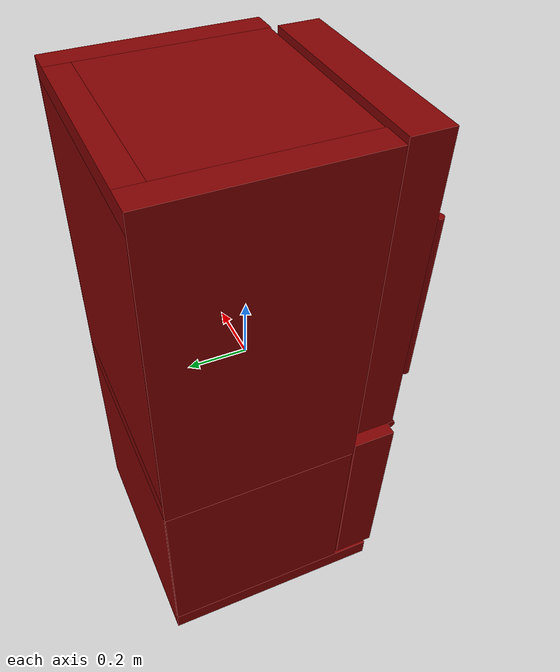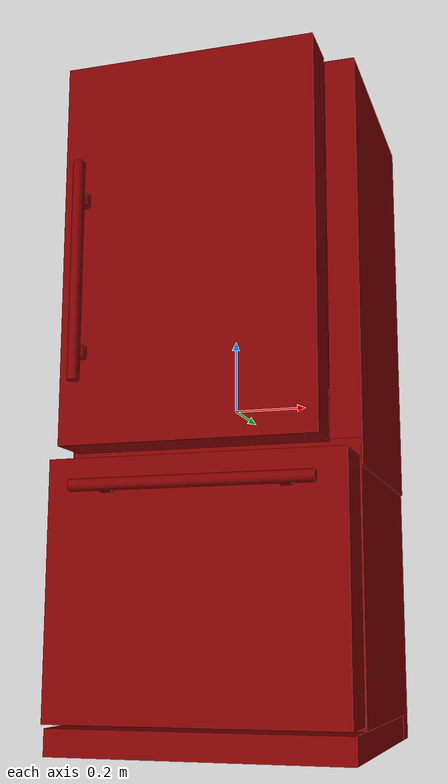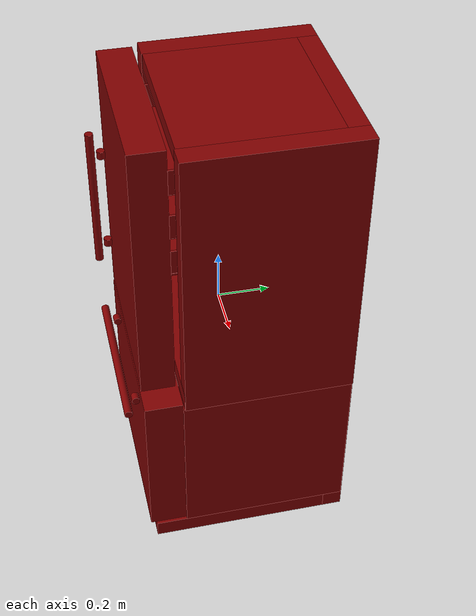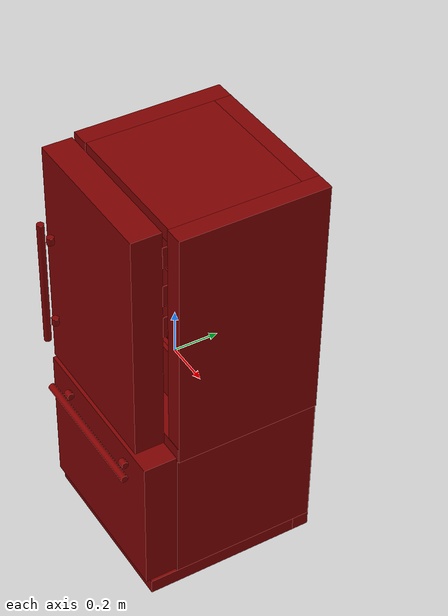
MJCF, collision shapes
<mujoco model="model">
  <compiler angle="radian"/>
  <asset>
    <mesh file="visuals/Body001.obj" name="Body001_vis"/>
    <mesh file="visuals/Body001_Clear.obj" name="Body001_Clear_vis"/>
    <mesh file="visuals/Door001.obj" name="Door001_vis"/>
    <mesh file="visuals/Door001_Clear.obj" name="Door001_Clear_vis"/>
    <mesh file="visuals/Drawer001.obj" name="Drawer001_vis"/>
    <mesh file="visuals/Drawer001_Clear.obj" name="Drawer001_Clear_vis"/>
    <mesh file="visuals/Drawer002.obj" name="Drawer002_vis"/>
    <mesh file="visuals/Drawer002_Clear.obj" name="Drawer002_Clear_vis"/>
    <mesh file="visuals/Drawer003.obj" name="Drawer003_vis"/>
    <texture file="visuals/T_BC001.png" name="Body001_material" type="2d"/>
    <material name="Body001_material" rgba="1 1 1 1.0" texture="Body001_material" shininess="0.2512328028678894" specular="0.3103448502657381"/>
    <texture file="visuals/T_BC001.png" name="Body001_Clear_material" type="2d"/>
    <material name="Body001_Clear_material" rgba="1 1 1 0.4715447425842285" texture="Body001_Clear_material" shininess="0.2512328028678894" specular="0.3103448502657381"/>
    <texture file="visuals/T_BC001.png" name="Door001_material" type="2d"/>
    <material name="Door001_material" rgba="1 1 1 1.0" texture="Door001_material" shininess="0.2512328028678894" specular="0.3103448502657381"/>
    <texture file="visuals/T_BC001.png" name="Door001_Clear_material" type="2d"/>
    <material name="Door001_Clear_material" rgba="1 1 1 0.4715447425842285" texture="Door001_Clear_material" shininess="0.2512328028678894" specular="0.3103448502657381"/>
    <texture file="visuals/T_BC001.png" name="Drawer001_material" type="2d"/>
    <material name="Drawer001_material" rgba="1 1 1 1.0" texture="Drawer001_material" shininess="0.2512328028678894" specular="0.3103448502657381"/>
    <texture file="visuals/T_BC001.png" name="Drawer001_Clear_material" type="2d"/>
    <material name="Drawer001_Clear_material" rgba="1 1 1 0.4715447425842285" texture="Drawer001_Clear_material" shininess="0.2512328028678894" specular="0.3103448502657381"/>
    <texture file="visuals/T_BC001.png" name="Drawer002_material" type="2d"/>
    <material name="Drawer002_material" rgba="1 1 1 1.0" texture="Drawer002_material" shininess="0.2512328028678894" specular="0.3103448502657381"/>
    <texture file="visuals/T_BC001.png" name="Drawer002_Clear_material" type="2d"/>
    <material name="Drawer002_Clear_material" rgba="1 1 1 0.4715447425842285" texture="Drawer002_Clear_material" shininess="0.2512328028678894" specular="0.3103448502657381"/>
    <texture file="visuals/T_BC001.png" name="Drawer003_material" type="2d"/>
    <material name="Drawer003_material" rgba="1 1 1 1.0" texture="Drawer003_material" shininess="0.2512328028678894" specular="0.3103448502657381"/>
  </asset>
  <default>
    <default class="visual">
      <geom conaffinity="0" contype="0" group="1" type="mesh"/>
    </default>
    <default class="collision">
      <geom group="0" rgba="0.5 0 0 0.5"/>
    </default>
    <default class="spawn">
      <geom group="0" rgba="1 1 1 0.5" contype="0" conaffinity="0"/>
      <site group="0" rgba="1 1 1 0.5"/>
    </default>
    <default class="region">
      <geom group="1" conaffinity="0" contype="0" rgba="0 1 0 0"/>
    </default>
  </default>
  <worldbody>
    <body>
      <body name="object">
        <geom mesh="Body001_vis" type="mesh" solimp="0.998 0.998 0.001" solref="0.001 1" density="100" friction="0.95 0.3 0.1" class="visual" material="Body001_material"/>
        <geom class="collision" type="box" pos="-0.353669 0.113916 0.357581" size="0.0441407784819603 0.327478289604187 0.5575453042984009" quat="1.0 0.0 0.0 0.0"/>
        <geom class="collision" type="box" pos="0.356469 0.113916 0.357581" size="0.0413416363298893 0.327478289604187 0.5575453042984009" quat="1.0 0.0 0.0 0.0"/>
        <geom class="collision" type="box" pos="0.000000 0.115839 0.884248" size="0.3941958248615265 0.3255560100078583 0.030877990648150444" quat="1.0 0.0 0.0 0.0"/>
        <geom class="collision" type="box" pos="0.000000 0.113330 -0.164927" size="0.3941958248615265 0.3280813992023468 0.035177987068891525" quat="1.0 0.0 0.0 0.0"/>
        <geom class="collision" type="box" pos="0.000000 0.048289 -0.880989" size="0.3941958248615265 0.39310532808303833 0.034136686474084854" quat="1.0 0.0 0.0 0.0"/>
        <geom class="collision" type="box" pos="0.001820 0.402406 0.000000" size="0.39237648248672485 0.03898891434073448 0.9151260852813721" quat="1.0 0.0 0.0 0.0"/>
        <geom class="collision" type="box" pos="-0.359124 0.113825 -0.523094" size="0.03529924526810646 0.32502371072769165 0.3242418169975281" quat="1.0 0.0 0.0 0.0"/>
        <geom class="collision" type="box" pos="0.353595 0.109162 -0.523094" size="0.04077289253473282 0.3296876549720764 0.3242424428462982" quat="1.0 0.0 0.0 0.0"/>
        <body name="Body001_Clear">
          <geom mesh="Body001_Clear_vis" type="mesh" solimp="0.998 0.998 0.001" solref="0.001 1" density="100" friction="0.95 0.3 0.1" class="visual" material="Body001_Clear_material"/>
          <geom class="collision" type="box" pos="-0.001101 0.123154 0.508615" size="0.3160151541233063 0.22527329623699188 0.002585908630862832" quat="1.0 0.0 0.0 0.0"/>
          <geom class="collision" type="box" pos="-0.001101 0.123154 0.509931" size="0.31601575016975403 0.22527365386486053 0.002585912123322487" quat="1.0 0.0 0.0 0.0"/>
          <geom class="collision" type="box" pos="-0.001101 0.123154 0.200251" size="0.3160169720649719 0.22527436912059784 0.002585918875411153" quat="1.0 0.0 0.0 0.0"/>
        </body>
        <body name="Door001">
          <joint axis="0.0 0.0 1.0" pos="0.309573 -0.294319 0.361622" limited="true" name="Door001_joint" range="0.0 1.5707963267948966" type="hinge" damping="1" frictionloss="1" armature=".01" stiffness="0.05"/>
          <geom mesh="Door001_vis" type="mesh" solimp="0.998 0.998 0.001" solref="0.001 1" density="100" friction="0.95 0.3 0.1" class="visual" material="Door001_material"/>
          <geom class="collision" type="box" pos="-0.025651 -0.302555 0.387360" size="0.3443422317504883 0.06587111949920654 0.5277639627456665" quat="1.0 0.0 0.0 0.0"/>
          <geom class="collision" type="cylinder" pos="-0.305365 -0.425431 0.314758" size="0.015980105847120285 0.2970961630344391" quat="1.0 0.0 0.0 0.0"/>
          <geom class="collision" type="cylinder" pos="-0.305365 -0.386325 0.516966" size="0.015980249270796776 0.015980079770088196" quat="1.0 0.0 0.0 0.0"/>
          <geom class="collision" type="cylinder" pos="-0.305365 -0.386325 0.100150" size="0.015980249270796776 0.015980098396539688" quat="1.0 0.0 0.0 0.0"/>
          <body name="Door001_Clear">
            <geom mesh="Door001_Clear_vis" type="mesh" solimp="0.998 0.998 0.001" solref="0.001 1" density="100" friction="0.95 0.3 0.1" class="visual" material="Door001_Clear_material"/>
            <geom class="collision" type="box" pos="0.011699 -0.202720 0.719683" size="0.2756255567073822 0.0477554053068161 0.002827831543982029" quat="1.0 0.0 0.0 0.0"/>
            <geom class="collision" type="box" pos="0.011699 -0.155387 0.769478" size="0.27561959624290466 0.0033586181234568357 0.048291660845279694" quat="1.0 0.0 0.0 0.0"/>
            <geom class="collision" type="box" pos="0.011699 -0.249344 0.769478" size="0.27562642097473145 0.001194413285702467 0.048292648047208786" quat="1.0 0.0 0.0 0.0"/>
            <geom class="collision" type="box" pos="0.287172 -0.202023 0.769478" size="0.0037614875473082066 0.0475623793900013 0.04829214885830879" quat="1.0 0.0 0.0 0.0"/>
            <geom class="collision" type="box" pos="-0.265770 -0.202334 0.769478" size="0.003705924842506647 0.047562457621097565 0.04829216003417969" quat="1.0 0.0 0.0 0.0"/>
            <geom class="collision" type="box" pos="0.011699 -0.202720 0.537987" size="0.2756277620792389 0.04775580018758774 0.0028278231620788574" quat="1.0 0.0 0.0 0.0"/>
            <geom class="collision" type="box" pos="0.011699 -0.155387 0.587783" size="0.27562329173088074 0.003358663059771061 0.04829185828566551" quat="1.0 0.0 0.0 0.0"/>
            <geom class="collision" type="box" pos="0.011699 -0.249344 0.587783" size="0.2756286561489105 0.0011944229481741786 0.04829252511262894" quat="1.0 0.0 0.0 0.0"/>
            <geom class="collision" type="box" pos="0.287172 -0.202023 0.587783" size="0.003761500818654895 0.047562770545482635 0.04829221963882446" quat="1.0 0.0 0.0 0.0"/>
            <geom class="collision" type="box" pos="-0.265399 -0.202334 0.587783" size="0.0033341876696795225 0.0475628487765789 0.04829223453998566" quat="1.0 0.0 0.0 0.0"/>
            <geom class="collision" type="box" pos="0.011699 -0.202525 0.385824" size="0.2756299674510956 0.04775619134306908 0.0028278010431677103" quat="1.0 0.0 0.0 0.0"/>
            <geom class="collision" type="box" pos="0.011699 -0.153538 0.435619" size="0.2756269574165344 0.003358707996085286 0.04829200357198715" quat="1.0 0.0 0.0 0.0"/>
            <geom class="collision" type="box" pos="0.011699 -0.248115 0.435619" size="0.2756308615207672 0.0011944326106458902 0.04829239100217819" quat="1.0 0.0 0.0 0.0"/>
            <geom class="collision" type="box" pos="0.287172 -0.201828 0.435619" size="0.0037615185137838125 0.04756316542625427 0.048292286694049835" quat="1.0 0.0 0.0 0.0"/>
            <geom class="collision" type="box" pos="-0.265399 -0.202139 0.435619" size="0.003334202105179429 0.04756324365735054 0.04829230159521103" quat="1.0 0.0 0.0 0.0"/>
          </body>
        </body>
        <body name="Drawer001">
          <joint axis="0.0 -1.0 0.0" pos="-0.048795 -0.093964 0.288337" limited="true" name="Drawer001_joint" range="0.0 0.5" type="slide" damping="1" frictionloss="1" armature=".01" stiffness="0.05"/>
          <geom mesh="Drawer001_vis" type="mesh" solimp="0.998 0.998 0.001" solref="0.001 1" density="100" friction="0.95 0.3 0.1" class="visual" material="Drawer001_material"/>
          <geom class="collision" type="box" pos="-0.047142 -0.095156 0.289734" size="0.2455880492925644 0.009432862512767315 0.07940971851348877" quat="1.0 0.0 0.0 0.0"/>
          <body name="Drawer001_Clear">
            <geom mesh="Drawer001_Clear_vis" type="mesh" solimp="0.998 0.998 0.001" solref="0.001 1" density="100" friction="0.95 0.3 0.1" class="visual" material="Drawer001_Clear_material"/>
            <geom class="collision" type="box" pos="-0.050748 0.323329 0.288173" size="0.23513461649417877 0.004633425734937191 0.0691257193684578" quat="1.0 0.0 0.0 0.0"/>
            <geom class="collision" type="box" pos="-0.280641 0.118165 0.288296" size="0.0036782720126211643 0.19884364306926727 0.069003164768219" quat="1.0 0.0 0.0 0.0"/>
            <geom class="collision" type="box" pos="0.182984 0.118165 0.288296" size="0.00367842148989439 0.198842853307724 0.06900307536125183" quat="1.0 0.0 0.0 0.0"/>
            <geom class="collision" type="box" pos="-0.037543 0.119027 0.221531" size="0.24040603637695312 0.19970352947711945 0.0031131766736507416" quat="1.0 0.0 0.0 0.0"/>
          </body>
        </body>
        <body name="Drawer002">
          <joint axis="0.0 -1.0 0.0" pos="-0.047778 -0.089806 0.001563" limited="true" name="Drawer002_joint" range="0.0 0.5" type="slide" damping="1" frictionloss="1" armature=".01" stiffness="0.05"/>
          <geom mesh="Drawer002_vis" type="mesh" solimp="0.998 0.998 0.001" solref="0.001 1" density="100" friction="0.95 0.3 0.1" class="visual" material="Drawer002_material"/>
          <geom class="collision" type="box" pos="-0.045325 -0.089728 0.002058" size="0.24617283046245575 0.009432952851057053 0.12223586440086365" quat="1.0 0.0 0.0 0.0"/>
          <body name="Drawer002_Clear">
            <geom mesh="Drawer002_Clear_vis" type="mesh" solimp="0.998 0.998 0.001" solref="0.001 1" density="100" friction="0.95 0.3 0.1" class="visual" material="Drawer002_Clear_material"/>
            <geom class="collision" type="box" pos="-0.037696 0.323329 0.003749" size="0.2444855123758316 0.0046334704384207726 0.11520379036664963" quat="1.0 0.0 0.0 0.0"/>
            <geom class="collision" type="box" pos="-0.279814 0.118165 0.003872" size="0.003678299952298403 0.1988465040922165 0.11508107930421829" quat="1.0 0.0 0.0 0.0"/>
            <geom class="collision" type="box" pos="0.199183 0.118165 0.003872" size="0.003991421312093735 0.19884571433067322 0.11508084088563919" quat="1.0 0.0 0.0 0.0"/>
            <geom class="collision" type="box" pos="-0.037543 0.119027 -0.108068" size="0.24040603637695312 0.19970639050006866 0.0031131673604249954" quat="1.0 0.0 0.0 0.0"/>
          </body>
        </body>
        <body name="Drawer003">
          <joint axis="0.0 -1.0 0.0" pos="-0.000000 -0.075423 -0.498025" limited="true" name="Drawer003_joint" range="0.0 0.4" type="slide" damping="1" frictionloss="1" armature=".01" stiffness="0.05"/>
          <geom mesh="Drawer003_vis" type="mesh" solimp="0.998 0.998 0.001" solref="0.001 1" density="100" friction="0.95 0.3 0.1" class="visual" material="Drawer003_material"/>
          <geom class="collision" type="box" pos="-0.000375 -0.294817 -0.505364" size="0.39055630564689636 0.07360929995775223 0.330458402633667" quat="1.0 0.0 0.0 0.0"/>
          <geom class="collision" type="cylinder" pos="0.007711 -0.420578 -0.251748" size="0.015980159863829613 0.3147745132446289" quat="0.7071068286895752 -0.0 0.7071067690849304 0.0"/>
          <geom class="collision" type="cylinder" pos="0.241891 -0.381472 -0.251748" size="0.015980249270796776 0.015980137512087822" quat="0.7071068286895752 -0.0 0.7071067690849304 0.0"/>
          <geom class="collision" type="cylinder" pos="-0.224574 -0.381472 -0.251748" size="0.015980249270796776 0.015980159863829613" quat="0.7071068286895752 -0.0 0.7071067690849304 0.0"/>
          <geom class="collision" type="box" pos="-0.002653 0.018189 -0.785883" size="0.30818891525268555 0.26911067962646484 0.005336998961865902" quat="1.0 0.0 0.0 0.0"/>
          <geom class="collision" type="box" pos="0.298713 0.018189 -0.566733" size="0.006826486904174089 0.26911085844039917 0.21224930882453918" quat="1.0 0.0 0.0 0.0"/>
          <geom class="collision" type="box" pos="-0.301607 0.018189 -0.566733" size="0.00682649202644825 0.2691110670566559 0.21224930882453918" quat="1.0 0.0 0.0 0.0"/>
          <geom class="collision" type="box" pos="-0.001774 0.280718 -0.566733" size="0.29292619228363037 0.00658427644520998 0.21224930882453918" quat="1.0 0.0 0.0 0.0"/>
          <geom class="collision" type="box" pos="-0.005882 -0.250606 -0.520320" size="0.3105635643005371 0.033676885068416595 0.30802199244499207" quat="1.0 0.0 0.0 0.0"/>
        </body>
        <geom class="region" name="reg_main" type="box" pos="0.0 0.0358435 0.0" size="0.39781 0.4055525 0.915126"/>
      </body>
    </body>
  </worldbody>
  <actuator>
    <motor name="Door001_joint_actuator" joint="Door001_joint" gear="50"/>
    <motor name="Drawer001_joint_actuator" joint="Drawer001_joint" gear="50"/>
    <motor name="Drawer002_joint_actuator" joint="Drawer002_joint" gear="50"/>
    <motor name="Drawer003_joint_actuator" joint="Drawer003_joint" gear="50"/>
  </actuator>
</mujoco>
